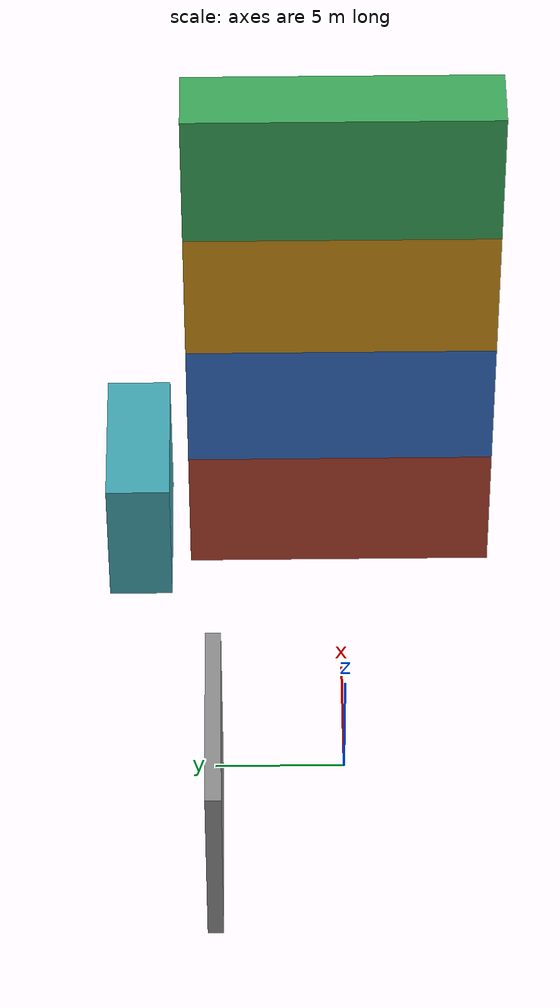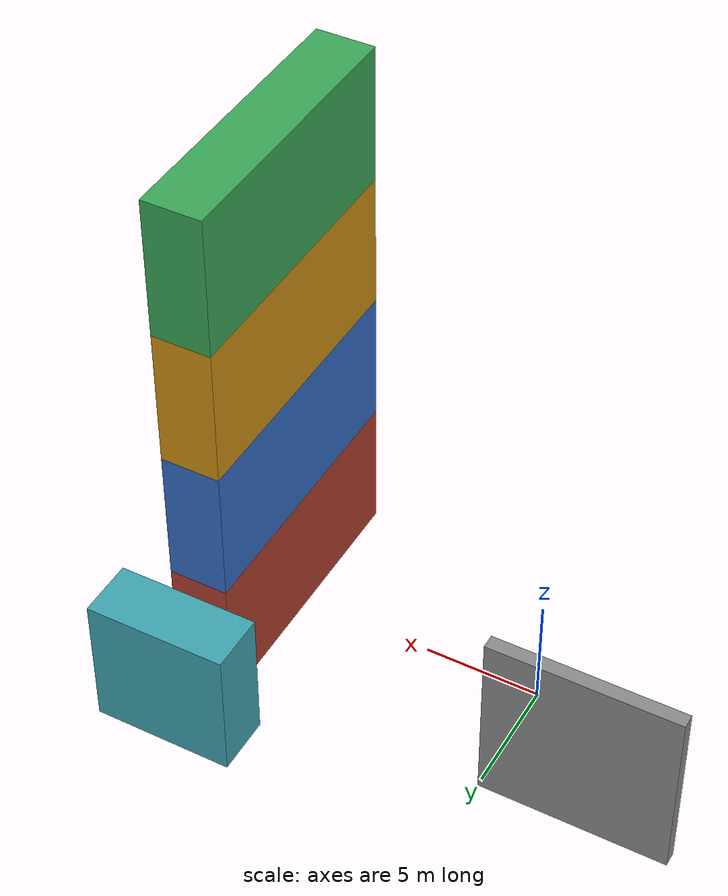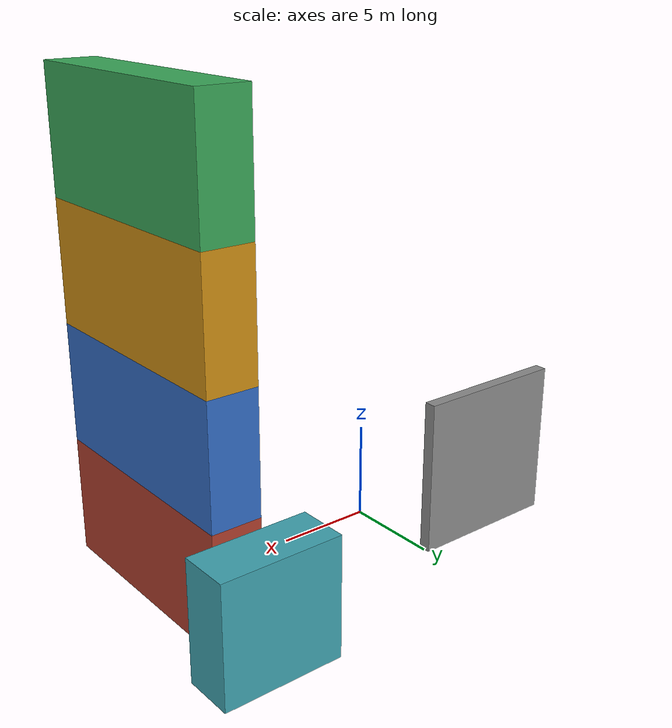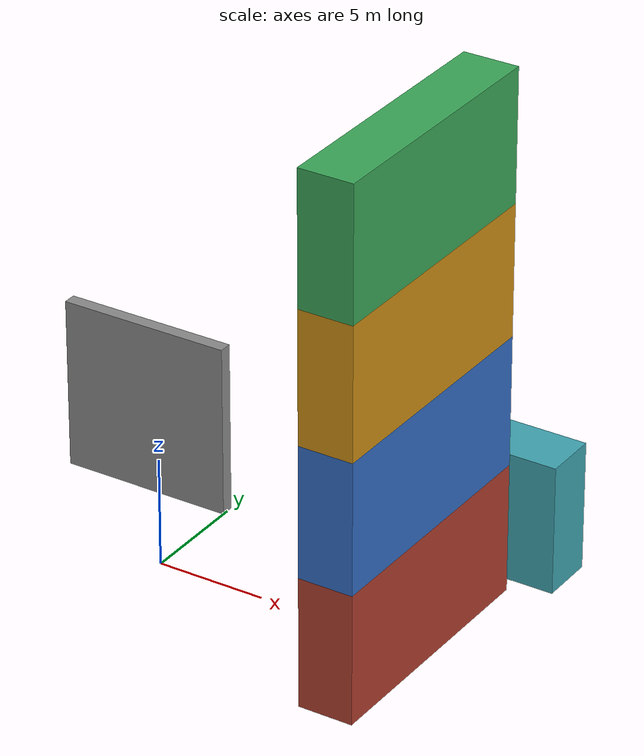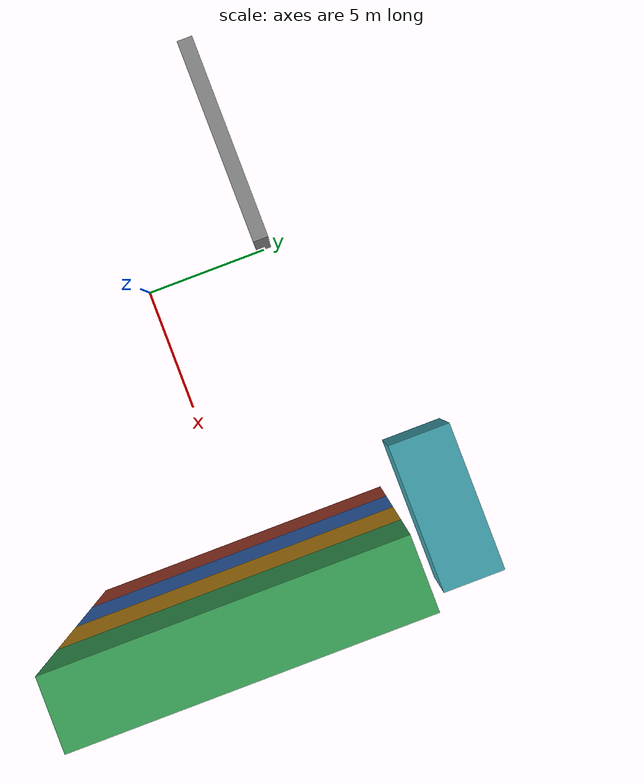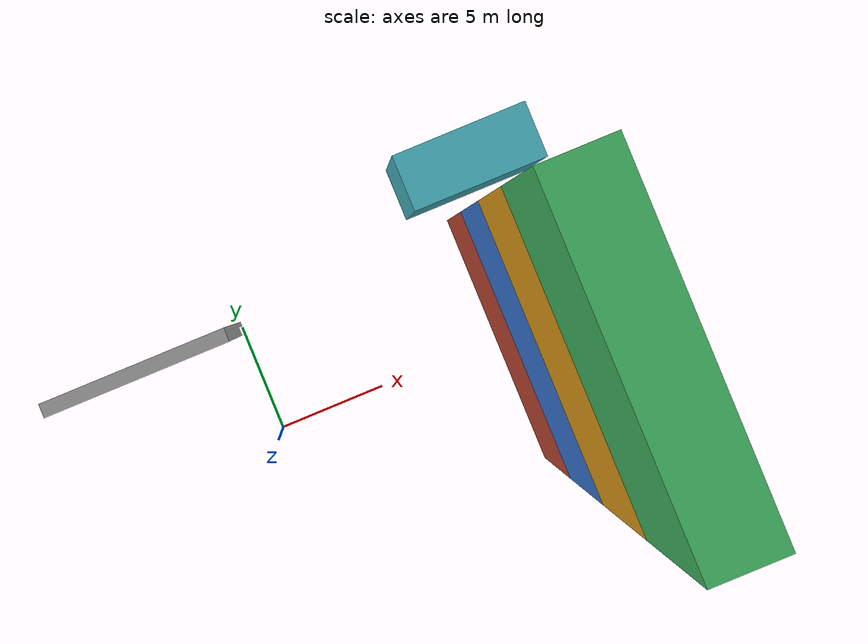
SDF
<sdf version="1.9">
 <world name="iris_warehouse_sensor">
  <physics name="1ms" type="ignore">
   <max_step_size>0.001</max_step_size>
   <real_time_factor>1.0</real_time_factor>
  </physics>
  <plugin filename="gz-sim-physics-system" name="gz::sim::systems::Physics"/>
  <plugin filename="gz-sim-sensors-system" name="gz::sim::systems::Sensors">
   <render_engine>ogre2</render_engine>
  </plugin>
  <plugin filename="gz-sim-user-commands-system" name="gz::sim::systems::UserCommands"/>
  <plugin filename="gz-sim-scene-broadcaster-system" name="gz::sim::systems::SceneBroadcaster"/>
  <plugin filename="gz-sim-imu-system" name="gz::sim::systems::Imu"/>
  <plugin filename="gz-sim-magnetometer-system" name="gz::sim::systems::Magnetometer"/>
  <plugin filename="gz-sim-air-pressure-system" name="gz::sim::systems::AirPressure"/>
  <plugin filename="gz-sim-navsat-system" name="gz::sim::systems::NavSat"/>
  <spherical_coordinates>
   <surface_model>EARTH_WGS84</surface_model>
   <latitude_deg>-35.363262</latitude_deg>
   <longitude_deg>149.165237</longitude_deg>
   <elevation>584</elevation>
   <heading_deg>0</heading_deg>
  </spherical_coordinates>
  <magnetic_field>2.1e-5 5.0e-6 -4.2e-5</magnetic_field>
  <scene><grid>false</grid></scene>
  <model name="fuel_container_1">
   <static>true</static>
   <pose>12 0 3 0 0 1.57</pose>
   <link name="link">
    <collision name="c"><geometry><box><size>12 2.5 6</size></box></geometry></collision>
    <visual name="v">
     <geometry><box><size>12 2.5 6</size></box></geometry>
     <material><ambient>0.6 0.2 0.15 1</ambient><diffuse>0.7 0.25 0.18 1</diffuse></material>
    </visual>
   </link>
  </model>
  <model name="fuel_container_1_level_2">
   <static>true</static>
   <pose>12 0 9 0 0 1.57</pose>
   <link name="link">
    <collision name="c"><geometry><box><size>12 2.5 6</size></box></geometry></collision>
    <visual name="v">
     <geometry><box><size>12 2.5 6</size></box></geometry>
     <material><ambient>0.16 0.34 0.62 1</ambient><diffuse>0.20 0.43 0.78 1</diffuse></material>
    </visual>
   </link>
  </model>
  <model name="fuel_container_1_level_3">
   <static>true</static>
   <pose>12 0 15 0 0 1.57</pose>
   <link name="link">
    <collision name="c"><geometry><box><size>12 2.5 6</size></box></geometry></collision>
    <visual name="v">
     <geometry><box><size>12 2.5 6</size></box></geometry>
     <material><ambient>0.68 0.46 0.06 1</ambient><diffuse>0.82 0.57 0.08 1</diffuse></material>
    </visual>
   </link>
  </model>
  <model name="fuel_container_1_level_4">
   <static>true</static>
   <pose>12 0 21 0 0 1.57</pose>
   <link name="link">
    <collision name="c"><geometry><box><size>12 2.5 6</size></box></geometry></collision>
    <visual name="v">
     <geometry><box><size>12 2.5 6</size></box></geometry>
     <material><ambient>0.18 0.50 0.27 1</ambient><diffuse>0.23 0.66 0.35 1</diffuse></material>
    </visual>
   </link>
  </model>
  <model name="fuel_container_2">
   <static>true</static>
   <pose>12 8 3 0 0 0</pose>
   <link name="link">
    <collision name="c"><geometry><box><size>6 2.5 6</size></box></geometry></collision>
    <visual name="v">
     <geometry><box><size>6 2.5 6</size></box></geometry>
     <material><ambient>0.2 0.55 0.6 1</ambient><diffuse>0.25 0.65 0.7 1</diffuse></material>
    </visual>
   </link>
  </model>
  <model name="shelf_row">
   <static>true</static>
   <pose>-4 5 4 0 0 0</pose>
   <link name="link">
    <collision name="c"><geometry><box><size>8 0.6 8</size></box></geometry></collision>
    <visual name="v">
     <geometry><box><size>8 0.6 8</size></box></geometry>
     <material><ambient>0.45 0.45 0.45 1</ambient><diffuse>0.55 0.55 0.55 1</diffuse></material>
    </visual>
   </link>
  </model>
 </world>
</sdf>
